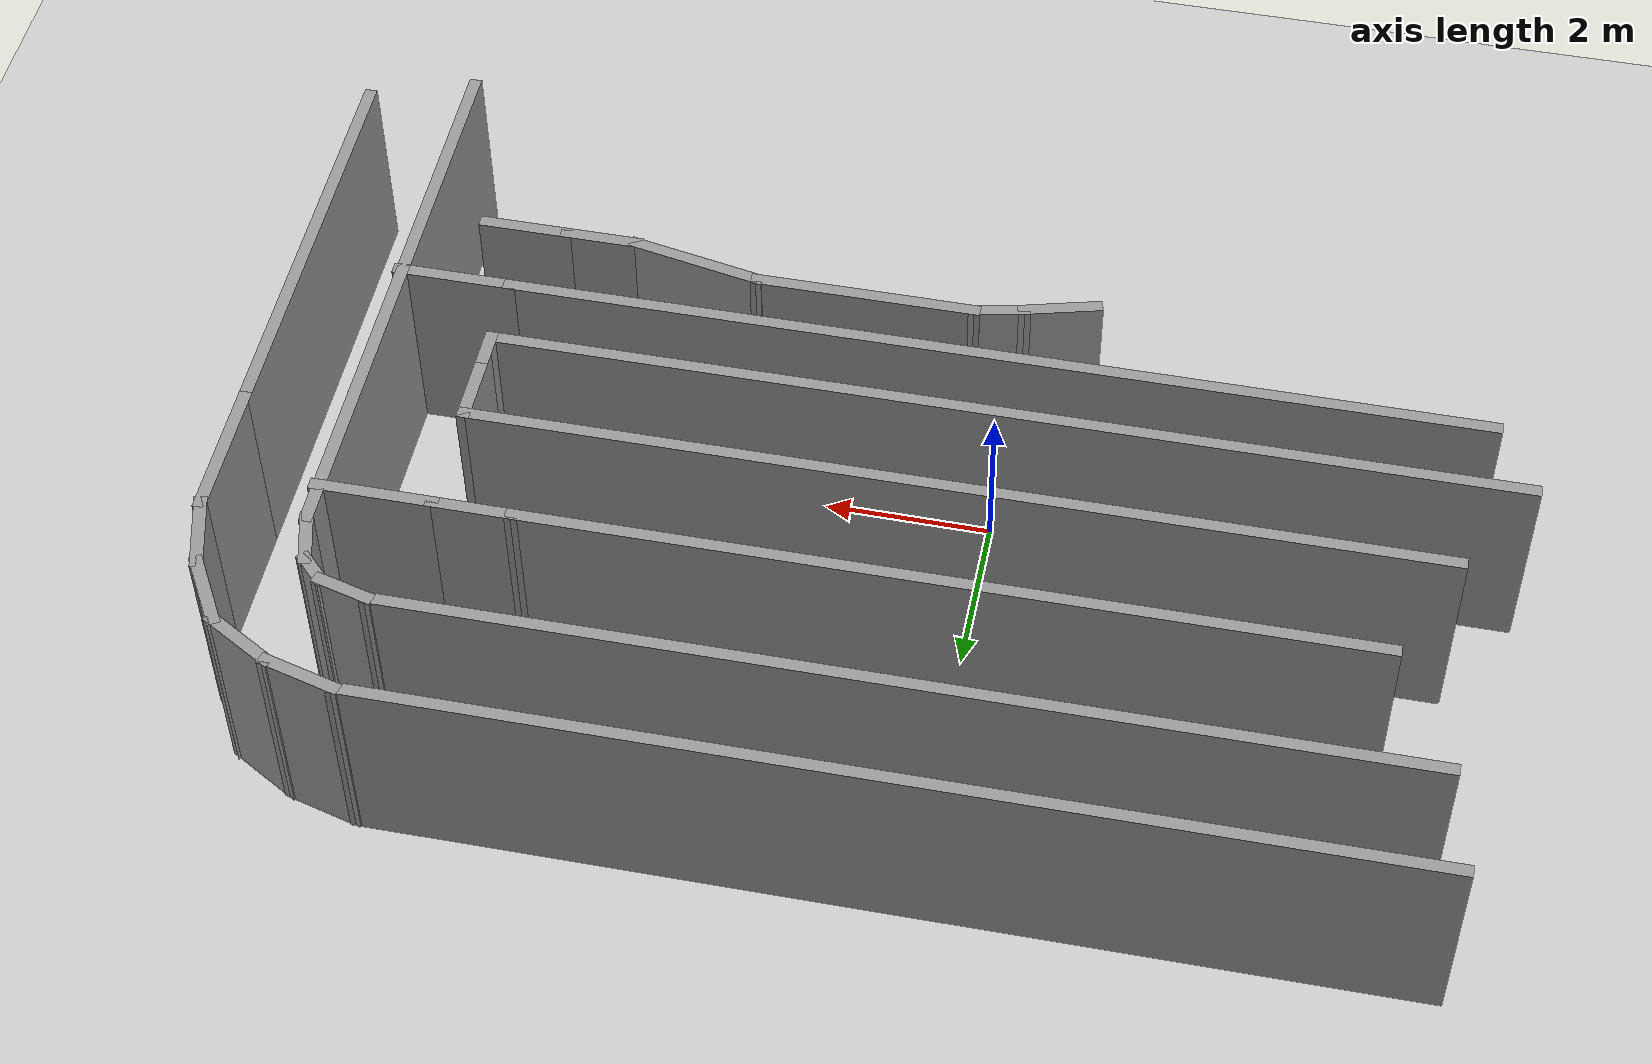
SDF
<sdf version="1.7">
 <world name="default">
  <model name="ground_plane">
   <static>1</static>
   <link name="link">
    <collision name="collision">
     <geometry><plane><normal>0 0 1</normal><size>100 100</size></plane></geometry>
     <surface>
      <contact><collide_bitmask>65535</collide_bitmask></contact>
      <friction><ode><mu>100</mu><mu2>50</mu2></ode></friction>
     </surface>
    </collision>
    <visual name="visual">
     <cast_shadows>0</cast_shadows>
     <geometry><plane><normal>0 0 1</normal><size>100 100</size></plane></geometry>
     <material>
      <script><uri>file://media/materials/scripts/gazebo.material</uri><name>Gazebo/Grey</name></script>
     </material>
    </visual>
   </link>
  </model>
  <model name="Race_Track">
   <link name="Wall_15">
    <pose>7.86803 4.21785 0 0 -0 1.8326</pose>
    <visual name="Wall_15_Visual">
     <pose>0 0 1.25 0 -0 0</pose>
     <geometry><box><size>1 0.15 2.5</size></box></geometry>
     <material>
      <script><uri>file://media/materials/scripts/gazebo.material</uri><name>Gazebo/Grey</name></script>
      <ambient>1 1 1 1</ambient>
      <shader type="pixel"/>
     </material>
     <meta><layer>0</layer></meta>
    </visual>
    <collision name="Wall_15_Collision">
     <pose>0 0 1.25 0 -0 0</pose>
     <geometry><box><size>1 0.15 2.5</size></box></geometry>
     <surface>
      <friction>
       <ode><mu>1</mu><mu2>1</mu2><fdir1>0 0 0</fdir1><slip1>0</slip1><slip2>0</slip2></ode>
       <torsional>
        <coefficient>1</coefficient>
        <patch_radius>0</patch_radius>
        <surface_radius>0</surface_radius>
        <use_patch_radius>1</use_patch_radius>
        <ode><slip>0</slip></ode>
       </torsional>
      </friction>
      <bounce><restitution_coefficient>0</restitution_coefficient><threshold>1e+06</threshold></bounce>
      <contact>
       <collide_without_contact>0</collide_without_contact>
       <collide_without_contact_bitmask>1</collide_without_contact_bitmask>
       <collide_bitmask>1</collide_bitmask>
       <ode>
        <soft_cfm>0</soft_cfm>
        <soft_erp>0.2</soft_erp>
        <kp>1e+13</kp>
        <kd>1</kd>
        <max_vel>0.01</max_vel>
        <min_depth>0</min_depth>
       </ode>
       <bullet>
        <split_impulse>1</split_impulse>
        <split_impulse_penetration_threshold>-0.01</split_impulse_penetration_threshold>
        <soft_cfm>0</soft_cfm>
        <soft_erp>0.2</soft_erp>
        <kp>1e+13</kp>
        <kd>1</kd>
       </bullet>
      </contact>
     </surface>
    </collision>
   </link>
   <link name="Wall_16">
    <pose>7.54554 4.99643 0 0 -0 2.0944</pose>
    <visual name="Wall_16_Visual">
     <pose>0 0 1.25 0 -0 0</pose>
     <geometry><box><size>1 0.15 2.5</size></box></geometry>
     <material>
      <script><uri>file://media/materials/scripts/gazebo.material</uri><name>Gazebo/Grey</name></script>
      <ambient>1 1 1 1</ambient>
      <shader type="pixel"/>
     </material>
     <meta><layer>0</layer></meta>
    </visual>
    <collision name="Wall_16_Collision">
     <pose>0 0 1.25 0 -0 0</pose>
     <geometry><box><size>1 0.15 2.5</size></box></geometry>
     <surface>
      <friction>
       <ode><mu>1</mu><mu2>1</mu2><fdir1>0 0 0</fdir1><slip1>0</slip1><slip2>0</slip2></ode>
       <torsional>
        <coefficient>1</coefficient>
        <patch_radius>0</patch_radius>
        <surface_radius>0</surface_radius>
        <use_patch_radius>1</use_patch_radius>
        <ode><slip>0</slip></ode>
       </torsional>
      </friction>
      <bounce><restitution_coefficient>0</restitution_coefficient><threshold>1e+06</threshold></bounce>
      <contact>
       <collide_without_contact>0</collide_without_contact>
       <collide_without_contact_bitmask>1</collide_without_contact_bitmask>
       <collide_bitmask>1</collide_bitmask>
       <ode>
        <soft_cfm>0</soft_cfm>
        <soft_erp>0.2</soft_erp>
        <kp>1e+13</kp>
        <kd>1</kd>
        <max_vel>0.01</max_vel>
        <min_depth>0</min_depth>
       </ode>
       <bullet>
        <split_impulse>1</split_impulse>
        <split_impulse_penetration_threshold>-0.01</split_impulse_penetration_threshold>
        <soft_cfm>0</soft_cfm>
        <soft_erp>0.2</soft_erp>
        <kp>1e+13</kp>
        <kd>1</kd>
       </bullet>
      </contact>
     </surface>
    </collision>
   </link>
   <link name="Wall_17">
    <pose>6.96498 5.57699 0 0 -0 2.61799</pose>
    <visual name="Wall_17_Visual">
     <pose>0 0 1.25 0 -0 0</pose>
     <geometry><box><size>1 0.15 2.5</size></box></geometry>
     <material>
      <script><uri>file://media/materials/scripts/gazebo.material</uri><name>Gazebo/Grey</name></script>
      <ambient>1 1 1 1</ambient>
      <shader type="pixel"/>
     </material>
     <meta><layer>0</layer></meta>
    </visual>
    <collision name="Wall_17_Collision">
     <pose>0 0 1.25 0 -0 0</pose>
     <geometry><box><size>1 0.15 2.5</size></box></geometry>
     <surface>
      <friction>
       <ode><mu>1</mu><mu2>1</mu2><fdir1>0 0 0</fdir1><slip1>0</slip1><slip2>0</slip2></ode>
       <torsional>
        <coefficient>1</coefficient>
        <patch_radius>0</patch_radius>
        <surface_radius>0</surface_radius>
        <use_patch_radius>1</use_patch_radius>
        <ode><slip>0</slip></ode>
       </torsional>
      </friction>
      <bounce><restitution_coefficient>0</restitution_coefficient><threshold>1e+06</threshold></bounce>
      <contact>
       <collide_without_contact>0</collide_without_contact>
       <collide_without_contact_bitmask>1</collide_without_contact_bitmask>
       <collide_bitmask>1</collide_bitmask>
       <ode>
        <soft_cfm>0</soft_cfm>
        <soft_erp>0.2</soft_erp>
        <kp>1e+13</kp>
        <kd>1</kd>
        <max_vel>0.01</max_vel>
        <min_depth>0</min_depth>
       </ode>
       <bullet>
        <split_impulse>1</split_impulse>
        <split_impulse_penetration_threshold>-0.01</split_impulse_penetration_threshold>
        <soft_cfm>0</soft_cfm>
        <soft_erp>0.2</soft_erp>
        <kp>1e+13</kp>
        <kd>1</kd>
       </bullet>
      </contact>
     </surface>
    </collision>
   </link>
   <link name="Wall_171">
    <pose>5.49179 -1.04733 0 0 -0 3.14159</pose>
    <visual name="Wall_171_Visual">
     <pose>0 0 1.25 0 -0 0</pose>
     <geometry><box><size>1.13438 0.15 2.5</size></box></geometry>
     <material>
      <script><uri>file://media/materials/scripts/gazebo.material</uri><name>Gazebo/Grey</name></script>
      <ambient>1 1 1 1</ambient>
      <shader type="pixel"/>
     </material>
     <meta><layer>0</layer></meta>
    </visual>
    <collision name="Wall_171_Collision">
     <pose>0 0 1.25 0 -0 0</pose>
     <geometry><box><size>1.13438 0.15 2.5</size></box></geometry>
     <surface>
      <friction>
       <ode><mu>1</mu><mu2>1</mu2><fdir1>0 0 0</fdir1><slip1>0</slip1><slip2>0</slip2></ode>
       <torsional>
        <coefficient>1</coefficient>
        <patch_radius>0</patch_radius>
        <surface_radius>0</surface_radius>
        <use_patch_radius>1</use_patch_radius>
        <ode><slip>0</slip></ode>
       </torsional>
      </friction>
      <bounce><restitution_coefficient>0</restitution_coefficient><threshold>1e+06</threshold></bounce>
      <contact>
       <collide_without_contact>0</collide_without_contact>
       <collide_without_contact_bitmask>1</collide_without_contact_bitmask>
       <collide_bitmask>1</collide_bitmask>
       <ode>
        <soft_cfm>0</soft_cfm>
        <soft_erp>0.2</soft_erp>
        <kp>1e+13</kp>
        <kd>1</kd>
        <max_vel>0.01</max_vel>
        <min_depth>0</min_depth>
       </ode>
       <bullet>
        <split_impulse>1</split_impulse>
        <split_impulse_penetration_threshold>-0.01</split_impulse_penetration_threshold>
        <soft_cfm>0</soft_cfm>
        <soft_erp>0.2</soft_erp>
        <kp>1e+13</kp>
        <kd>1</kd>
       </bullet>
      </contact>
     </surface>
    </collision>
   </link>
   <link name="Wall_18">
    <pose>6.1864 5.89949 0 0 -0 2.87979</pose>
    <visual name="Wall_18_Visual">
     <pose>0 0 1.25 0 -0 0</pose>
     <geometry><box><size>1 0.15 2.5</size></box></geometry>
     <material>
      <script><uri>file://media/materials/scripts/gazebo.material</uri><name>Gazebo/Grey</name></script>
      <ambient>1 1 1 1</ambient>
      <shader type="pixel"/>
     </material>
     <meta><layer>0</layer></meta>
    </visual>
    <collision name="Wall_18_Collision">
     <pose>0 0 1.25 0 -0 0</pose>
     <geometry><box><size>1 0.15 2.5</size></box></geometry>
     <surface>
      <friction>
       <ode><mu>1</mu><mu2>1</mu2><fdir1>0 0 0</fdir1><slip1>0</slip1><slip2>0</slip2></ode>
       <torsional>
        <coefficient>1</coefficient>
        <patch_radius>0</patch_radius>
        <surface_radius>0</surface_radius>
        <use_patch_radius>1</use_patch_radius>
        <ode><slip>0</slip></ode>
       </torsional>
      </friction>
      <bounce><restitution_coefficient>0</restitution_coefficient><threshold>1e+06</threshold></bounce>
      <contact>
       <collide_without_contact>0</collide_without_contact>
       <collide_without_contact_bitmask>1</collide_without_contact_bitmask>
       <collide_bitmask>1</collide_bitmask>
       <ode>
        <soft_cfm>0</soft_cfm>
        <soft_erp>0.2</soft_erp>
        <kp>1e+13</kp>
        <kd>1</kd>
        <max_vel>0.01</max_vel>
        <min_depth>0</min_depth>
       </ode>
       <bullet>
        <split_impulse>1</split_impulse>
        <split_impulse_penetration_threshold>-0.01</split_impulse_penetration_threshold>
        <soft_cfm>0</soft_cfm>
        <soft_erp>0.2</soft_erp>
        <kp>1e+13</kp>
        <kd>1</kd>
       </bullet>
      </contact>
     </surface>
    </collision>
   </link>
   <link name="Wall_189">
    <pose>4.56015 -1.04733 0 0 -0 3.14159</pose>
    <visual name="Wall_189_Visual">
     <pose>0 0 1.25 0 -0 0</pose>
     <geometry><box><size>1 0.15 2.5</size></box></geometry>
     <material>
      <script><uri>file://media/materials/scripts/gazebo.material</uri><name>Gazebo/Grey</name></script>
      <ambient>1 1 1 1</ambient>
      <shader type="pixel"/>
     </material>
     <meta><layer>0</layer></meta>
    </visual>
    <collision name="Wall_189_Collision">
     <pose>0 0 1.25 0 -0 0</pose>
     <geometry><box><size>1 0.15 2.5</size></box></geometry>
     <surface>
      <friction>
       <ode><mu>1</mu><mu2>1</mu2><fdir1>0 0 0</fdir1><slip1>0</slip1><slip2>0</slip2></ode>
       <torsional>
        <coefficient>1</coefficient>
        <patch_radius>0</patch_radius>
        <surface_radius>0</surface_radius>
        <use_patch_radius>1</use_patch_radius>
        <ode><slip>0</slip></ode>
       </torsional>
      </friction>
      <bounce><restitution_coefficient>0</restitution_coefficient><threshold>1e+06</threshold></bounce>
      <contact>
       <collide_without_contact>0</collide_without_contact>
       <collide_without_contact_bitmask>1</collide_without_contact_bitmask>
       <collide_bitmask>1</collide_bitmask>
       <ode>
        <soft_cfm>0</soft_cfm>
        <soft_erp>0.2</soft_erp>
        <kp>1e+13</kp>
        <kd>1</kd>
        <max_vel>0.01</max_vel>
        <min_depth>0</min_depth>
       </ode>
       <bullet>
        <split_impulse>1</split_impulse>
        <split_impulse_penetration_threshold>-0.01</split_impulse_penetration_threshold>
        <soft_cfm>0</soft_cfm>
        <soft_erp>0.2</soft_erp>
        <kp>1e+13</kp>
        <kd>1</kd>
       </bullet>
      </contact>
     </surface>
    </collision>
   </link>
   <link name="Wall_19">
    <pose>-0.274121 6.00949 0 0 -0 3.14159</pose>
    <visual name="Wall_19_Visual">
     <pose>0 0 1.25 0 -0 0</pose>
     <geometry><box><size>12.25 0.15 2.5</size></box></geometry>
     <material>
      <script><uri>file://media/materials/scripts/gazebo.material</uri><name>Gazebo/Grey</name></script>
      <ambient>1 1 1 1</ambient>
      <shader type="pixel"/>
     </material>
     <meta><layer>0</layer></meta>
    </visual>
    <collision name="Wall_19_Collision">
     <pose>0 0 1.25 0 -0 0</pose>
     <geometry><box><size>12.25 0.15 2.5</size></box></geometry>
     <surface>
      <friction>
       <ode><mu>1</mu><mu2>1</mu2><fdir1>0 0 0</fdir1><slip1>0</slip1><slip2>0</slip2></ode>
       <torsional>
        <coefficient>1</coefficient>
        <patch_radius>0</patch_radius>
        <surface_radius>0</surface_radius>
        <use_patch_radius>1</use_patch_radius>
        <ode><slip>0</slip></ode>
       </torsional>
      </friction>
      <bounce><restitution_coefficient>0</restitution_coefficient><threshold>1e+06</threshold></bounce>
      <contact>
       <collide_without_contact>0</collide_without_contact>
       <collide_without_contact_bitmask>1</collide_without_contact_bitmask>
       <collide_bitmask>1</collide_bitmask>
       <ode>
        <soft_cfm>0</soft_cfm>
        <soft_erp>0.2</soft_erp>
        <kp>1e+13</kp>
        <kd>1</kd>
        <max_vel>0.01</max_vel>
        <min_depth>0</min_depth>
       </ode>
       <bullet>
        <split_impulse>1</split_impulse>
        <split_impulse_penetration_threshold>-0.01</split_impulse_penetration_threshold>
        <soft_cfm>0</soft_cfm>
        <soft_erp>0.2</soft_erp>
        <kp>1e+13</kp>
        <kd>1</kd>
       </bullet>
      </contact>
     </surface>
    </collision>
   </link>
   <link name="Wall_220">
    <pose>-0.992486 -0.973086 0 0 -0 0.261799</pose>
    <visual name="Wall_220_Visual">
     <pose>0 0 1.25 0 -0 0</pose>
     <geometry><box><size>1 0.15 2.5</size></box></geometry>
     <material>
      <script><uri>file://media/materials/scripts/gazebo.material</uri><name>Gazebo/Grey</name></script>
      <ambient>1 1 1 1</ambient>
      <shader type="pixel"/>
     </material>
     <meta><layer>0</layer></meta>
    </visual>
    <collision name="Wall_220_Collision">
     <pose>0 0 1.25 0 -0 0</pose>
     <geometry><box><size>1 0.15 2.5</size></box></geometry>
     <surface>
      <friction>
       <ode><mu>1</mu><mu2>1</mu2><fdir1>0 0 0</fdir1><slip1>0</slip1><slip2>0</slip2></ode>
       <torsional>
        <coefficient>1</coefficient>
        <patch_radius>0</patch_radius>
        <surface_radius>0</surface_radius>
        <use_patch_radius>1</use_patch_radius>
        <ode><slip>0</slip></ode>
       </torsional>
      </friction>
      <bounce><restitution_coefficient>0</restitution_coefficient><threshold>1e+06</threshold></bounce>
      <contact>
       <collide_without_contact>0</collide_without_contact>
       <collide_without_contact_bitmask>1</collide_without_contact_bitmask>
       <collide_bitmask>1</collide_bitmask>
       <ode>
        <soft_cfm>0</soft_cfm>
        <soft_erp>0.2</soft_erp>
        <kp>1e+13</kp>
        <kd>1</kd>
        <max_vel>0.01</max_vel>
        <min_depth>0</min_depth>
       </ode>
       <bullet>
        <split_impulse>1</split_impulse>
        <split_impulse_penetration_threshold>-0.01</split_impulse_penetration_threshold>
        <soft_cfm>0</soft_cfm>
        <soft_erp>0.2</soft_erp>
        <kp>1e+13</kp>
        <kd>1</kd>
       </bullet>
      </contact>
     </surface>
    </collision>
   </link>
   <link name="Wall_221">
    <pose>-0.294762 -0.803967 0 0 -0 0.203014</pose>
    <visual name="Wall_221_Visual">
     <pose>0 0 1.25 0 -0 0</pose>
     <geometry><box><size>0.736454 0.15 2.5</size></box></geometry>
     <material>
      <script><uri>file://media/materials/scripts/gazebo.material</uri><name>Gazebo/Grey</name></script>
      <ambient>1 1 1 1</ambient>
      <shader type="pixel"/>
     </material>
     <meta><layer>0</layer></meta>
    </visual>
    <collision name="Wall_221_Collision">
     <pose>0 0 1.25 0 -0 0</pose>
     <geometry><box><size>0.736454 0.15 2.5</size></box></geometry>
     <surface>
      <friction>
       <ode><mu>1</mu><mu2>1</mu2><fdir1>0 0 0</fdir1><slip1>0</slip1><slip2>0</slip2></ode>
       <torsional>
        <coefficient>1</coefficient>
        <patch_radius>0</patch_radius>
        <surface_radius>0</surface_radius>
        <use_patch_radius>1</use_patch_radius>
        <ode><slip>0</slip></ode>
       </torsional>
      </friction>
      <bounce><restitution_coefficient>0</restitution_coefficient><threshold>1e+06</threshold></bounce>
      <contact>
       <collide_without_contact>0</collide_without_contact>
       <collide_without_contact_bitmask>1</collide_without_contact_bitmask>
       <collide_bitmask>1</collide_bitmask>
       <ode>
        <soft_cfm>0</soft_cfm>
        <soft_erp>0.2</soft_erp>
        <kp>1e+13</kp>
        <kd>1</kd>
        <max_vel>0.01</max_vel>
        <min_depth>0</min_depth>
       </ode>
       <bullet>
        <split_impulse>1</split_impulse>
        <split_impulse_penetration_threshold>-0.01</split_impulse_penetration_threshold>
        <soft_cfm>0</soft_cfm>
        <soft_erp>0.2</soft_erp>
        <kp>1e+13</kp>
        <kd>1</kd>
       </bullet>
      </contact>
     </surface>
    </collision>
   </link>
   <link name="Wall_222">
    <pose>1.29244 -0.744845 0 0 -0 0</pose>
    <visual name="Wall_222_Visual">
     <pose>0 0 1.25 0 -0 0</pose>
     <geometry><box><size>2.75 0.15 2.5</size></box></geometry>
     <material>
      <script><uri>file://media/materials/scripts/gazebo.material</uri><name>Gazebo/Grey</name></script>
      <ambient>1 1 1 1</ambient>
      <shader type="pixel"/>
     </material>
     <meta><layer>0</layer></meta>
    </visual>
    <collision name="Wall_222_Collision">
     <pose>0 0 1.25 0 -0 0</pose>
     <geometry><box><size>2.75 0.15 2.5</size></box></geometry>
     <surface>
      <friction>
       <ode><mu>1</mu><mu2>1</mu2><fdir1>0 0 0</fdir1><slip1>0</slip1><slip2>0</slip2></ode>
       <torsional>
        <coefficient>1</coefficient>
        <patch_radius>0</patch_radius>
        <surface_radius>0</surface_radius>
        <use_patch_radius>1</use_patch_radius>
        <ode><slip>0</slip></ode>
       </torsional>
      </friction>
      <bounce><restitution_coefficient>0</restitution_coefficient><threshold>1e+06</threshold></bounce>
      <contact>
       <collide_without_contact>0</collide_without_contact>
       <collide_without_contact_bitmask>1</collide_without_contact_bitmask>
       <collide_bitmask>1</collide_bitmask>
       <ode>
        <soft_cfm>0</soft_cfm>
        <soft_erp>0.2</soft_erp>
        <kp>1e+13</kp>
        <kd>1</kd>
        <max_vel>0.01</max_vel>
        <min_depth>0</min_depth>
       </ode>
       <bullet>
        <split_impulse>1</split_impulse>
        <split_impulse_penetration_threshold>-0.01</split_impulse_penetration_threshold>
        <soft_cfm>0</soft_cfm>
        <soft_erp>0.2</soft_erp>
        <kp>1e+13</kp>
        <kd>1</kd>
       </bullet>
      </contact>
     </surface>
    </collision>
   </link>
   <link name="Wall_223">
    <pose>3.36379 -0.896088 0 0 0 -0.193618</pose>
    <visual name="Wall_223_Visual">
     <pose>0 0 1.25 0 -0 0</pose>
     <geometry><box><size>1.72208 0.15 2.5</size></box></geometry>
     <material>
      <script><uri>file://media/materials/scripts/gazebo.material</uri><name>Gazebo/Grey</name></script>
      <ambient>1 1 1 1</ambient>
      <shader type="pixel"/>
     </material>
     <meta><layer>0</layer></meta>
    </visual>
    <collision name="Wall_223_Collision">
     <pose>0 0 1.25 0 -0 0</pose>
     <geometry><box><size>1.72208 0.15 2.5</size></box></geometry>
     <surface>
      <friction>
       <ode><mu>1</mu><mu2>1</mu2><fdir1>0 0 0</fdir1><slip1>0</slip1><slip2>0</slip2></ode>
       <torsional>
        <coefficient>1</coefficient>
        <patch_radius>0</patch_radius>
        <surface_radius>0</surface_radius>
        <use_patch_radius>1</use_patch_radius>
        <ode><slip>0</slip></ode>
       </torsional>
      </friction>
      <bounce><restitution_coefficient>0</restitution_coefficient><threshold>1e+06</threshold></bounce>
      <contact>
       <collide_without_contact>0</collide_without_contact>
       <collide_without_contact_bitmask>1</collide_without_contact_bitmask>
       <collide_bitmask>1</collide_bitmask>
       <ode>
        <soft_cfm>0</soft_cfm>
        <soft_erp>0.2</soft_erp>
        <kp>1e+13</kp>
        <kd>1</kd>
        <max_vel>0.01</max_vel>
        <min_depth>0</min_depth>
       </ode>
       <bullet>
        <split_impulse>1</split_impulse>
        <split_impulse_penetration_threshold>-0.01</split_impulse_penetration_threshold>
        <soft_cfm>0</soft_cfm>
        <soft_erp>0.2</soft_erp>
        <kp>1e+13</kp>
        <kd>1</kd>
       </bullet>
      </contact>
     </surface>
    </collision>
   </link>
   <link name="Wall_51">
    <pose>6.75129 0.227873 0 0 -0 1.5708</pose>
    <visual name="Wall_51_Visual">
     <pose>0 0 1.25 0 -0 0</pose>
     <geometry><box><size>7.25 0.15 2.5</size></box></geometry>
     <material>
      <script><uri>file://media/materials/scripts/gazebo.material</uri><name>Gazebo/Grey</name></script>
      <ambient>1 1 1 1</ambient>
      <shader type="pixel"/>
     </material>
     <meta><layer>0</layer></meta>
    </visual>
    <collision name="Wall_51_Collision">
     <pose>0 0 1.25 0 -0 0</pose>
     <geometry><box><size>7.25 0.15 2.5</size></box></geometry>
     <surface>
      <friction>
       <ode><mu>1</mu><mu2>1</mu2><fdir1>0 0 0</fdir1><slip1>0</slip1><slip2>0</slip2></ode>
       <torsional>
        <coefficient>1</coefficient>
        <patch_radius>0</patch_radius>
        <surface_radius>0</surface_radius>
        <use_patch_radius>1</use_patch_radius>
        <ode><slip>0</slip></ode>
       </torsional>
      </friction>
      <bounce><restitution_coefficient>0</restitution_coefficient><threshold>1e+06</threshold></bounce>
      <contact>
       <collide_without_contact>0</collide_without_contact>
       <collide_without_contact_bitmask>1</collide_without_contact_bitmask>
       <collide_bitmask>1</collide_bitmask>
       <ode>
        <soft_cfm>0</soft_cfm>
        <soft_erp>0.2</soft_erp>
        <kp>1e+13</kp>
        <kd>1</kd>
        <max_vel>0.01</max_vel>
        <min_depth>0</min_depth>
       </ode>
       <bullet>
        <split_impulse>1</split_impulse>
        <split_impulse_penetration_threshold>-0.01</split_impulse_penetration_threshold>
        <soft_cfm>0</soft_cfm>
        <soft_erp>0.2</soft_erp>
        <kp>1e+13</kp>
        <kd>1</kd>
       </bullet>
      </contact>
     </surface>
    </collision>
   </link>
   <link name="Wall_52">
    <pose>6.67364 4.06765 0 0 -0 1.8326</pose>
    <visual name="Wall_52_Visual">
     <pose>0 0 1.25 0 -0 0</pose>
     <geometry><box><size>0.75 0.15 2.5</size></box></geometry>
     <material>
      <script><uri>file://media/materials/scripts/gazebo.material</uri><name>Gazebo/Grey</name></script>
      <ambient>1 1 1 1</ambient>
      <shader type="pixel"/>
     </material>
     <meta><layer>0</layer></meta>
    </visual>
    <collision name="Wall_52_Collision">
     <pose>0 0 1.25 0 -0 0</pose>
     <geometry><box><size>0.75 0.15 2.5</size></box></geometry>
     <surface>
      <friction>
       <ode><mu>1</mu><mu2>1</mu2><fdir1>0 0 0</fdir1><slip1>0</slip1><slip2>0</slip2></ode>
       <torsional>
        <coefficient>1</coefficient>
        <patch_radius>0</patch_radius>
        <surface_radius>0</surface_radius>
        <use_patch_radius>1</use_patch_radius>
        <ode><slip>0</slip></ode>
       </torsional>
      </friction>
      <bounce><restitution_coefficient>0</restitution_coefficient><threshold>1e+06</threshold></bounce>
      <contact>
       <collide_without_contact>0</collide_without_contact>
       <collide_without_contact_bitmask>1</collide_without_contact_bitmask>
       <collide_bitmask>1</collide_bitmask>
       <ode>
        <soft_cfm>0</soft_cfm>
        <soft_erp>0.2</soft_erp>
        <kp>1e+13</kp>
        <kd>1</kd>
        <max_vel>0.01</max_vel>
        <min_depth>0</min_depth>
       </ode>
       <bullet>
        <split_impulse>1</split_impulse>
        <split_impulse_penetration_threshold>-0.01</split_impulse_penetration_threshold>
        <soft_cfm>0</soft_cfm>
        <soft_erp>0.2</soft_erp>
        <kp>1e+13</kp>
        <kd>1</kd>
       </bullet>
      </contact>
     </surface>
    </collision>
   </link>
   <link name="Wall_55">
    <pose>6.47225 4.48117 0 0 -0 2.35619</pose>
    <visual name="Wall_55_Visual">
     <pose>0 0 1.25 0 -0 0</pose>
     <geometry><box><size>0.5 0.15 2.5</size></box></geometry>
     <material>
      <script><uri>file://media/materials/scripts/gazebo.material</uri><name>Gazebo/Grey</name></script>
      <ambient>1 1 1 1</ambient>
      <shader type="pixel"/>
     </material>
     <meta><layer>0</layer></meta>
    </visual>
    <collision name="Wall_55_Collision">
     <pose>0 0 1.25 0 -0 0</pose>
     <geometry><box><size>0.5 0.15 2.5</size></box></geometry>
     <surface>
      <friction>
       <ode><mu>1</mu><mu2>1</mu2><fdir1>0 0 0</fdir1><slip1>0</slip1><slip2>0</slip2></ode>
       <torsional>
        <coefficient>1</coefficient>
        <patch_radius>0</patch_radius>
        <surface_radius>0</surface_radius>
        <use_patch_radius>1</use_patch_radius>
        <ode><slip>0</slip></ode>
       </torsional>
      </friction>
      <bounce><restitution_coefficient>0</restitution_coefficient><threshold>1e+06</threshold></bounce>
      <contact>
       <collide_without_contact>0</collide_without_contact>
       <collide_without_contact_bitmask>1</collide_without_contact_bitmask>
       <collide_bitmask>1</collide_bitmask>
       <ode>
        <soft_cfm>0</soft_cfm>
        <soft_erp>0.2</soft_erp>
        <kp>1e+13</kp>
        <kd>1</kd>
        <max_vel>0.01</max_vel>
        <min_depth>0</min_depth>
       </ode>
       <bullet>
        <split_impulse>1</split_impulse>
        <split_impulse_penetration_threshold>-0.01</split_impulse_penetration_threshold>
        <soft_cfm>0</soft_cfm>
        <soft_erp>0.2</soft_erp>
        <kp>1e+13</kp>
        <kd>1</kd>
       </bullet>
      </contact>
     </surface>
    </collision>
   </link>
   <link name="Wall_56">
    <pose>6.05873 4.68256 0 0 -0 2.87979</pose>
    <visual name="Wall_56_Visual">
     <pose>0 0 1.25 0 -0 0</pose>
     <geometry><box><size>0.75 0.15 2.5</size></box></geometry>
     <material>
      <script><uri>file://media/materials/scripts/gazebo.material</uri><name>Gazebo/Grey</name></script>
      <ambient>1 1 1 1</ambient>
      <shader type="pixel"/>
     </material>
     <meta><layer>0</layer></meta>
    </visual>
    <collision name="Wall_56_Collision">
     <pose>0 0 1.25 0 -0 0</pose>
     <geometry><box><size>0.75 0.15 2.5</size></box></geometry>
     <surface>
      <friction>
       <ode><mu>1</mu><mu2>1</mu2><fdir1>0 0 0</fdir1><slip1>0</slip1><slip2>0</slip2></ode>
       <torsional>
        <coefficient>1</coefficient>
        <patch_radius>0</patch_radius>
        <surface_radius>0</surface_radius>
        <use_patch_radius>1</use_patch_radius>
        <ode><slip>0</slip></ode>
       </torsional>
      </friction>
      <bounce><restitution_coefficient>0</restitution_coefficient><threshold>1e+06</threshold></bounce>
      <contact>
       <collide_without_contact>0</collide_without_contact>
       <collide_without_contact_bitmask>1</collide_without_contact_bitmask>
       <collide_bitmask>1</collide_bitmask>
       <ode>
        <soft_cfm>0</soft_cfm>
        <soft_erp>0.2</soft_erp>
        <kp>1e+13</kp>
        <kd>1</kd>
        <max_vel>0.01</max_vel>
        <min_depth>0</min_depth>
       </ode>
       <bullet>
        <split_impulse>1</split_impulse>
        <split_impulse_penetration_threshold>-0.01</split_impulse_penetration_threshold>
        <soft_cfm>0</soft_cfm>
        <soft_erp>0.2</soft_erp>
        <kp>1e+13</kp>
        <kd>1</kd>
       </bullet>
      </contact>
     </surface>
    </collision>
   </link>
   <link name="Wall_57">
    <pose>-0.156046 4.76021 0 0 -0 3.14159</pose>
    <visual name="Wall_57_Visual">
     <pose>0 0 1.25 0 -0 0</pose>
     <geometry><box><size>12 0.15 2.5</size></box></geometry>
     <material>
      <script><uri>file://media/materials/scripts/gazebo.material</uri><name>Gazebo/Grey</name></script>
      <ambient>1 1 1 1</ambient>
      <shader type="pixel"/>
     </material>
     <meta><layer>0</layer></meta>
    </visual>
    <collision name="Wall_57_Collision">
     <pose>0 0 1.25 0 -0 0</pose>
     <geometry><box><size>12 0.15 2.5</size></box></geometry>
     <surface>
      <friction>
       <ode><mu>1</mu><mu2>1</mu2><fdir1>0 0 0</fdir1><slip1>0</slip1><slip2>0</slip2></ode>
       <torsional>
        <coefficient>1</coefficient>
        <patch_radius>0</patch_radius>
        <surface_radius>0</surface_radius>
        <use_patch_radius>1</use_patch_radius>
        <ode><slip>0</slip></ode>
       </torsional>
      </friction>
      <bounce><restitution_coefficient>0</restitution_coefficient><threshold>1e+06</threshold></bounce>
      <contact>
       <collide_without_contact>0</collide_without_contact>
       <collide_without_contact_bitmask>1</collide_without_contact_bitmask>
       <collide_bitmask>1</collide_bitmask>
       <ode>
        <soft_cfm>0</soft_cfm>
        <soft_erp>0.2</soft_erp>
        <kp>1e+13</kp>
        <kd>1</kd>
        <max_vel>0.01</max_vel>
        <min_depth>0</min_depth>
       </ode>
       <bullet>
        <split_impulse>1</split_impulse>
        <split_impulse_penetration_threshold>-0.01</split_impulse_penetration_threshold>
        <soft_cfm>0</soft_cfm>
        <soft_erp>0.2</soft_erp>
        <kp>1e+13</kp>
        <kd>1</kd>
       </bullet>
      </contact>
     </surface>
    </collision>
   </link>
   <link name="Wall_79">
    <pose>-0.408559 3.30834 0 0 -0 0</pose>
    <visual name="Wall_79_Visual">
     <pose>0 0 1.25 0 -0 0</pose>
     <geometry><box><size>10 0.15 2.5</size></box></geometry>
     <material>
      <script><uri>file://media/materials/scripts/gazebo.material</uri><name>Gazebo/Grey</name></script>
      <ambient>1 1 1 1</ambient>
      <shader type="pixel"/>
     </material>
     <meta><layer>0</layer></meta>
    </visual>
    <collision name="Wall_79_Collision">
     <pose>0 0 1.25 0 -0 0</pose>
     <geometry><box><size>10 0.15 2.5</size></box></geometry>
     <surface>
      <friction>
       <ode><mu>1</mu><mu2>1</mu2><fdir1>0 0 0</fdir1><slip1>0</slip1><slip2>0</slip2></ode>
       <torsional>
        <coefficient>1</coefficient>
        <patch_radius>0</patch_radius>
        <surface_radius>0</surface_radius>
        <use_patch_radius>1</use_patch_radius>
        <ode><slip>0</slip></ode>
       </torsional>
      </friction>
      <bounce><restitution_coefficient>0</restitution_coefficient><threshold>1e+06</threshold></bounce>
      <contact>
       <collide_without_contact>0</collide_without_contact>
       <collide_without_contact_bitmask>1</collide_without_contact_bitmask>
       <collide_bitmask>1</collide_bitmask>
       <ode>
        <soft_cfm>0</soft_cfm>
        <soft_erp>0.2</soft_erp>
        <kp>1e+13</kp>
        <kd>1</kd>
        <max_vel>0.01</max_vel>
        <min_depth>0</min_depth>
       </ode>
       <bullet>
        <split_impulse>1</split_impulse>
        <split_impulse_penetration_threshold>-0.01</split_impulse_penetration_threshold>
        <soft_cfm>0</soft_cfm>
        <soft_erp>0.2</soft_erp>
        <kp>1e+13</kp>
        <kd>1</kd>
       </bullet>
      </contact>
     </surface>
    </collision>
   </link>
   <link name="Wall_8">
    <pose>7.97803 -0.342665 0 0 -0 1.5708</pose>
    <visual name="Wall_8_Visual">
     <pose>0 0 1.25 0 -0 0</pose>
     <geometry><box><size>5.25 0.15 2.5</size></box></geometry>
     <material>
      <script><uri>file://media/materials/scripts/gazebo.material</uri><name>Gazebo/Grey</name></script>
      <ambient>1 1 1 1</ambient>
      <shader type="pixel"/>
     </material>
     <meta><layer>0</layer></meta>
    </visual>
    <collision name="Wall_8_Collision">
     <pose>0 0 1.25 0 -0 0</pose>
     <geometry><box><size>5.25 0.15 2.5</size></box></geometry>
     <surface>
      <friction>
       <ode><mu>1</mu><mu2>1</mu2><fdir1>0 0 0</fdir1><slip1>0</slip1><slip2>0</slip2></ode>
       <torsional>
        <coefficient>1</coefficient>
        <patch_radius>0</patch_radius>
        <surface_radius>0</surface_radius>
        <use_patch_radius>1</use_patch_radius>
        <ode><slip>0</slip></ode>
       </torsional>
      </friction>
      <bounce><restitution_coefficient>0</restitution_coefficient><threshold>1e+06</threshold></bounce>
      <contact>
       <collide_without_contact>0</collide_without_contact>
       <collide_without_contact_bitmask>1</collide_without_contact_bitmask>
       <collide_bitmask>1</collide_bitmask>
       <ode>
        <soft_cfm>0</soft_cfm>
        <soft_erp>0.2</soft_erp>
        <kp>1e+13</kp>
        <kd>1</kd>
        <max_vel>0.01</max_vel>
        <min_depth>0</min_depth>
       </ode>
       <bullet>
        <split_impulse>1</split_impulse>
        <split_impulse_penetration_threshold>-0.01</split_impulse_penetration_threshold>
        <soft_cfm>0</soft_cfm>
        <soft_erp>0.2</soft_erp>
        <kp>1e+13</kp>
        <kd>1</kd>
       </bullet>
      </contact>
     </surface>
    </collision>
   </link>
   <link name="Wall_81">
    <pose>6.1157 3.30578 0 0 -0 3.14159</pose>
    <visual name="Wall_81_Visual">
     <pose>0 0 1.25 0 -0 0</pose>
     <geometry><box><size>1.5 0.15 2.5</size></box></geometry>
     <material>
      <script><uri>file://media/materials/scripts/gazebo.material</uri><name>Gazebo/Grey</name></script>
      <ambient>1 1 1 1</ambient>
      <shader type="pixel"/>
     </material>
     <meta><layer>0</layer></meta>
    </visual>
    <collision name="Wall_81_Collision">
     <pose>0 0 1.25 0 -0 0</pose>
     <geometry><box><size>1.5 0.15 2.5</size></box></geometry>
     <surface>
      <friction>
       <ode><mu>1</mu><mu2>1</mu2><fdir1>0 0 0</fdir1><slip1>0</slip1><slip2>0</slip2></ode>
       <torsional>
        <coefficient>1</coefficient>
        <patch_radius>0</patch_radius>
        <surface_radius>0</surface_radius>
        <use_patch_radius>1</use_patch_radius>
        <ode><slip>0</slip></ode>
       </torsional>
      </friction>
      <bounce><restitution_coefficient>0</restitution_coefficient><threshold>1e+06</threshold></bounce>
      <contact>
       <collide_without_contact>0</collide_without_contact>
       <collide_without_contact_bitmask>1</collide_without_contact_bitmask>
       <collide_bitmask>1</collide_bitmask>
       <ode>
        <soft_cfm>0</soft_cfm>
        <soft_erp>0.2</soft_erp>
        <kp>1e+13</kp>
        <kd>1</kd>
        <max_vel>0.01</max_vel>
        <min_depth>0</min_depth>
       </ode>
       <bullet>
        <split_impulse>1</split_impulse>
        <split_impulse_penetration_threshold>-0.01</split_impulse_penetration_threshold>
        <soft_cfm>0</soft_cfm>
        <soft_erp>0.2</soft_erp>
        <kp>1e+13</kp>
        <kd>1</kd>
       </bullet>
      </contact>
     </surface>
    </collision>
   </link>
   <link name="Wall_84">
    <pose>4.97857 3.30706 0 0 0 -0.002776</pose>
    <visual name="Wall_84_Visual">
     <pose>0 0 1.25 0 -0 0</pose>
     <geometry><box><size>1.07426 0.15 2.5</size></box></geometry>
     <material>
      <script><uri>file://media/materials/scripts/gazebo.material</uri><name>Gazebo/Grey</name></script>
      <ambient>1 1 1 1</ambient>
      <shader type="pixel"/>
     </material>
     <meta><layer>0</layer></meta>
    </visual>
    <collision name="Wall_84_Collision">
     <pose>0 0 1.25 0 -0 0</pose>
     <geometry><box><size>1.07426 0.15 2.5</size></box></geometry>
     <surface>
      <friction>
       <ode><mu>1</mu><mu2>1</mu2><fdir1>0 0 0</fdir1><slip1>0</slip1><slip2>0</slip2></ode>
       <torsional>
        <coefficient>1</coefficient>
        <patch_radius>0</patch_radius>
        <surface_radius>0</surface_radius>
        <use_patch_radius>1</use_patch_radius>
        <ode><slip>0</slip></ode>
       </torsional>
      </friction>
      <bounce><restitution_coefficient>0</restitution_coefficient><threshold>1e+06</threshold></bounce>
      <contact>
       <collide_without_contact>0</collide_without_contact>
       <collide_without_contact_bitmask>1</collide_without_contact_bitmask>
       <collide_bitmask>1</collide_bitmask>
       <ode>
        <soft_cfm>0</soft_cfm>
        <soft_erp>0.2</soft_erp>
        <kp>1e+13</kp>
        <kd>1</kd>
        <max_vel>0.01</max_vel>
        <min_depth>0</min_depth>
       </ode>
       <bullet>
        <split_impulse>1</split_impulse>
        <split_impulse_penetration_threshold>-0.01</split_impulse_penetration_threshold>
        <soft_cfm>0</soft_cfm>
        <soft_erp>0.2</soft_erp>
        <kp>1e+13</kp>
        <kd>1</kd>
       </bullet>
      </contact>
     </surface>
    </collision>
   </link>
   <link name="Wall_86">
    <pose>-0.246431 1.95706 0 0 0 -0.000226</pose>
    <visual name="Wall_86_Visual">
     <pose>0 0 1.25 0 -0 0</pose>
     <geometry><box><size>11.5243 0.15 2.5</size></box></geometry>
     <material>
      <script><uri>file://media/materials/scripts/gazebo.material</uri><name>Gazebo/Grey</name></script>
      <ambient>1 1 1 1</ambient>
      <shader type="pixel"/>
     </material>
     <meta><layer>0</layer></meta>
    </visual>
    <collision name="Wall_86_Collision">
     <pose>0 0 1.25 0 -0 0</pose>
     <geometry><box><size>11.5243 0.15 2.5</size></box></geometry>
     <surface>
      <friction>
       <ode><mu>1</mu><mu2>1</mu2><fdir1>0 0 0</fdir1><slip1>0</slip1><slip2>0</slip2></ode>
       <torsional>
        <coefficient>1</coefficient>
        <patch_radius>0</patch_radius>
        <surface_radius>0</surface_radius>
        <use_patch_radius>1</use_patch_radius>
        <ode><slip>0</slip></ode>
       </torsional>
      </friction>
      <bounce><restitution_coefficient>0</restitution_coefficient><threshold>1e+06</threshold></bounce>
      <contact>
       <collide_without_contact>0</collide_without_contact>
       <collide_without_contact_bitmask>1</collide_without_contact_bitmask>
       <collide_bitmask>1</collide_bitmask>
       <ode>
        <soft_cfm>0</soft_cfm>
        <soft_erp>0.2</soft_erp>
        <kp>1e+13</kp>
        <kd>1</kd>
        <max_vel>0.01</max_vel>
        <min_depth>0</min_depth>
       </ode>
       <bullet>
        <split_impulse>1</split_impulse>
        <split_impulse_penetration_threshold>-0.01</split_impulse_penetration_threshold>
        <soft_cfm>0</soft_cfm>
        <soft_erp>0.2</soft_erp>
        <kp>1e+13</kp>
        <kd>1</kd>
       </bullet>
      </contact>
     </surface>
    </collision>
   </link>
   <link name="Wall_88">
    <pose>5.4407 1.53078 0 0 0 -1.5708</pose>
    <visual name="Wall_88_Visual">
     <pose>0 0 1.25 0 -0 0</pose>
     <geometry><box><size>1 0.15 2.5</size></box></geometry>
     <material>
      <script><uri>file://media/materials/scripts/gazebo.material</uri><name>Gazebo/Grey</name></script>
      <ambient>1 1 1 1</ambient>
      <shader type="pixel"/>
     </material>
     <meta><layer>0</layer></meta>
    </visual>
    <collision name="Wall_88_Collision">
     <pose>0 0 1.25 0 -0 0</pose>
     <geometry><box><size>1 0.15 2.5</size></box></geometry>
     <surface>
      <friction>
       <ode><mu>1</mu><mu2>1</mu2><fdir1>0 0 0</fdir1><slip1>0</slip1><slip2>0</slip2></ode>
       <torsional>
        <coefficient>1</coefficient>
        <patch_radius>0</patch_radius>
        <surface_radius>0</surface_radius>
        <use_patch_radius>1</use_patch_radius>
        <ode><slip>0</slip></ode>
       </torsional>
      </friction>
      <bounce><restitution_coefficient>0</restitution_coefficient><threshold>1e+06</threshold></bounce>
      <contact>
       <collide_without_contact>0</collide_without_contact>
       <collide_without_contact_bitmask>1</collide_without_contact_bitmask>
       <collide_bitmask>1</collide_bitmask>
       <ode>
        <soft_cfm>0</soft_cfm>
        <soft_erp>0.2</soft_erp>
        <kp>1e+13</kp>
        <kd>1</kd>
        <max_vel>0.01</max_vel>
        <min_depth>0</min_depth>
       </ode>
       <bullet>
        <split_impulse>1</split_impulse>
        <split_impulse_penetration_threshold>-0.01</split_impulse_penetration_threshold>
        <soft_cfm>0</soft_cfm>
        <soft_erp>0.2</soft_erp>
        <kp>1e+13</kp>
        <kd>1</kd>
       </bullet>
      </contact>
     </surface>
    </collision>
   </link>
   <link name="Wall_89">
    <pose>5.4407 0.930776 0 0 0 -1.5708</pose>
    <visual name="Wall_89_Visual">
     <pose>0 0 1.25 0 -0 0</pose>
     <geometry><box><size>0.5 0.15 2.5</size></box></geometry>
     <material>
      <script><uri>file://media/materials/scripts/gazebo.material</uri><name>Gazebo/Grey</name></script>
      <ambient>1 1 1 1</ambient>
      <shader type="pixel"/>
     </material>
     <meta><layer>0</layer></meta>
    </visual>
    <collision name="Wall_89_Collision">
     <pose>0 0 1.25 0 -0 0</pose>
     <geometry><box><size>0.5 0.15 2.5</size></box></geometry>
     <surface>
      <friction>
       <ode><mu>1</mu><mu2>1</mu2><fdir1>0 0 0</fdir1><slip1>0</slip1><slip2>0</slip2></ode>
       <torsional>
        <coefficient>1</coefficient>
        <patch_radius>0</patch_radius>
        <surface_radius>0</surface_radius>
        <use_patch_radius>1</use_patch_radius>
        <ode><slip>0</slip></ode>
       </torsional>
      </friction>
      <bounce><restitution_coefficient>0</restitution_coefficient><threshold>1e+06</threshold></bounce>
      <contact>
       <collide_without_contact>0</collide_without_contact>
       <collide_without_contact_bitmask>1</collide_without_contact_bitmask>
       <collide_bitmask>1</collide_bitmask>
       <ode>
        <soft_cfm>0</soft_cfm>
        <soft_erp>0.2</soft_erp>
        <kp>1e+13</kp>
        <kd>1</kd>
        <max_vel>0.01</max_vel>
        <min_depth>0</min_depth>
       </ode>
       <bullet>
        <split_impulse>1</split_impulse>
        <split_impulse_penetration_threshold>-0.01</split_impulse_penetration_threshold>
        <soft_cfm>0</soft_cfm>
        <soft_erp>0.2</soft_erp>
        <kp>1e+13</kp>
        <kd>1</kd>
       </bullet>
      </contact>
     </surface>
    </collision>
   </link>
   <link name="Wall_9">
    <pose>7.97803 3.00733 0 0 -0 1.5708</pose>
    <visual name="Wall_9_Visual">
     <pose>0 0 1.25 0 -0 0</pose>
     <geometry><box><size>1.75 0.15 2.5</size></box></geometry>
     <material>
      <script><uri>file://media/materials/scripts/gazebo.material</uri><name>Gazebo/Grey</name></script>
      <ambient>1 1 1 1</ambient>
      <shader type="pixel"/>
     </material>
     <meta><layer>0</layer></meta>
    </visual>
    <collision name="Wall_9_Collision">
     <pose>0 0 1.25 0 -0 0</pose>
     <geometry><box><size>1.75 0.15 2.5</size></box></geometry>
     <surface>
      <friction>
       <ode><mu>1</mu><mu2>1</mu2><fdir1>0 0 0</fdir1><slip1>0</slip1><slip2>0</slip2></ode>
       <torsional>
        <coefficient>1</coefficient>
        <patch_radius>0</patch_radius>
        <surface_radius>0</surface_radius>
        <use_patch_radius>1</use_patch_radius>
        <ode><slip>0</slip></ode>
       </torsional>
      </friction>
      <bounce><restitution_coefficient>0</restitution_coefficient><threshold>1e+06</threshold></bounce>
      <contact>
       <collide_without_contact>0</collide_without_contact>
       <collide_without_contact_bitmask>1</collide_without_contact_bitmask>
       <collide_bitmask>1</collide_bitmask>
       <ode>
        <soft_cfm>0</soft_cfm>
        <soft_erp>0.2</soft_erp>
        <kp>1e+13</kp>
        <kd>1</kd>
        <max_vel>0.01</max_vel>
        <min_depth>0</min_depth>
       </ode>
       <bullet>
        <split_impulse>1</split_impulse>
        <split_impulse_penetration_threshold>-0.01</split_impulse_penetration_threshold>
        <soft_cfm>0</soft_cfm>
        <soft_erp>0.2</soft_erp>
        <kp>1e+13</kp>
        <kd>1</kd>
       </bullet>
      </contact>
     </surface>
    </collision>
   </link>
   <link name="Wall_91">
    <pose>-0.609303 0.755776 0 0 -0 3.14159</pose>
    <visual name="Wall_91_Visual">
     <pose>0 0 1.25 0 -0 0</pose>
     <geometry><box><size>12.25 0.15 2.5</size></box></geometry>
     <material>
      <script><uri>file://media/materials/scripts/gazebo.material</uri><name>Gazebo/Grey</name></script>
      <ambient>1 1 1 1</ambient>
      <shader type="pixel"/>
     </material>
     <meta><layer>0</layer></meta>
    </visual>
    <collision name="Wall_91_Collision">
     <pose>0 0 1.25 0 -0 0</pose>
     <geometry><box><size>12.25 0.15 2.5</size></box></geometry>
     <surface>
      <friction>
       <ode><mu>1</mu><mu2>1</mu2><fdir1>0 0 0</fdir1><slip1>0</slip1><slip2>0</slip2></ode>
       <torsional>
        <coefficient>1</coefficient>
        <patch_radius>0</patch_radius>
        <surface_radius>0</surface_radius>
        <use_patch_radius>1</use_patch_radius>
        <ode><slip>0</slip></ode>
       </torsional>
      </friction>
      <bounce><restitution_coefficient>0</restitution_coefficient><threshold>1e+06</threshold></bounce>
      <contact>
       <collide_without_contact>0</collide_without_contact>
       <collide_without_contact_bitmask>1</collide_without_contact_bitmask>
       <collide_bitmask>1</collide_bitmask>
       <ode>
        <soft_cfm>0</soft_cfm>
        <soft_erp>0.2</soft_erp>
        <kp>1e+13</kp>
        <kd>1</kd>
        <max_vel>0.01</max_vel>
        <min_depth>0</min_depth>
       </ode>
       <bullet>
        <split_impulse>1</split_impulse>
        <split_impulse_penetration_threshold>-0.01</split_impulse_penetration_threshold>
        <soft_cfm>0</soft_cfm>
        <soft_erp>0.2</soft_erp>
        <kp>1e+13</kp>
        <kd>1</kd>
       </bullet>
      </contact>
     </surface>
    </collision>
   </link>
   <link name="Wall_95">
    <pose>-0.359303 -0.094224 0 0 -0 3.14159</pose>
    <visual name="Wall_95_Visual">
     <pose>0 0 1.25 0 -0 0</pose>
     <geometry><box><size>11.75 0.15 2.5</size></box></geometry>
     <material>
      <script><uri>file://media/materials/scripts/gazebo.material</uri><name>Gazebo/Grey</name></script>
      <ambient>1 1 1 1</ambient>
      <shader type="pixel"/>
     </material>
     <meta><layer>0</layer></meta>
    </visual>
    <collision name="Wall_95_Collision">
     <pose>0 0 1.25 0 -0 0</pose>
     <geometry><box><size>11.75 0.15 2.5</size></box></geometry>
     <surface>
      <friction>
       <ode><mu>1</mu><mu2>1</mu2><fdir1>0 0 0</fdir1><slip1>0</slip1><slip2>0</slip2></ode>
       <torsional>
        <coefficient>1</coefficient>
        <patch_radius>0</patch_radius>
        <surface_radius>0</surface_radius>
        <use_patch_radius>1</use_patch_radius>
        <ode><slip>0</slip></ode>
       </torsional>
      </friction>
      <bounce><restitution_coefficient>0</restitution_coefficient><threshold>1e+06</threshold></bounce>
      <contact>
       <collide_without_contact>0</collide_without_contact>
       <collide_without_contact_bitmask>1</collide_without_contact_bitmask>
       <collide_bitmask>1</collide_bitmask>
       <ode>
        <soft_cfm>0</soft_cfm>
        <soft_erp>0.2</soft_erp>
        <kp>1e+13</kp>
        <kd>1</kd>
        <max_vel>0.01</max_vel>
        <min_depth>0</min_depth>
       </ode>
       <bullet>
        <split_impulse>1</split_impulse>
        <split_impulse_penetration_threshold>-0.01</split_impulse_penetration_threshold>
        <soft_cfm>0</soft_cfm>
        <soft_erp>0.2</soft_erp>
        <kp>1e+13</kp>
        <kd>1</kd>
       </bullet>
      </contact>
     </surface>
    </collision>
   </link>
   <link name="Wall_97">
    <pose>6.1157 -0.094224 0 0 -0 0</pose>
    <visual name="Wall_97_Visual">
     <pose>0 0 1.25 0 -0 0</pose>
     <geometry><box><size>1.5 0.15 2.5</size></box></geometry>
     <material>
      <script><uri>file://media/materials/scripts/gazebo.material</uri><name>Gazebo/Grey</name></script>
      <ambient>1 1 1 1</ambient>
      <shader type="pixel"/>
     </material>
     <meta><layer>0</layer></meta>
    </visual>
    <collision name="Wall_97_Collision">
     <pose>0 0 1.25 0 -0 0</pose>
     <geometry><box><size>1.5 0.15 2.5</size></box></geometry>
     <surface>
      <friction>
       <ode><mu>1</mu><mu2>1</mu2><fdir1>0 0 0</fdir1><slip1>0</slip1><slip2>0</slip2></ode>
       <torsional>
        <coefficient>1</coefficient>
        <patch_radius>0</patch_radius>
        <surface_radius>0</surface_radius>
        <use_patch_radius>1</use_patch_radius>
        <ode><slip>0</slip></ode>
       </torsional>
      </friction>
      <bounce><restitution_coefficient>0</restitution_coefficient><threshold>1e+06</threshold></bounce>
      <contact>
       <collide_without_contact>0</collide_without_contact>
       <collide_without_contact_bitmask>1</collide_without_contact_bitmask>
       <collide_bitmask>1</collide_bitmask>
       <ode>
        <soft_cfm>0</soft_cfm>
        <soft_erp>0.2</soft_erp>
        <kp>1e+13</kp>
        <kd>1</kd>
        <max_vel>0.01</max_vel>
        <min_depth>0</min_depth>
       </ode>
       <bullet>
        <split_impulse>1</split_impulse>
        <split_impulse_penetration_threshold>-0.01</split_impulse_penetration_threshold>
        <soft_cfm>0</soft_cfm>
        <soft_erp>0.2</soft_erp>
        <kp>1e+13</kp>
        <kd>1</kd>
       </bullet>
      </contact>
     </surface>
    </collision>
   </link>
   <model name="Mailbox">
    <link name="link">
     <collision name="collision">
      <geometry><mesh><uri>model://mailbox/meshes/mailbox.dae</uri></mesh></geometry>
     </collision>
     <visual name="visual">
      <geometry><mesh><uri>model://mailbox/meshes/mailbox.dae</uri></mesh></geometry>
      <material>
       <script>
        <uri>model://mailbox/materials/scripts</uri>
        <uri>model://mailbox/materials/textures</uri>
        <name>Mailbox/Diffuse</name>
       </script>
      </material>
     </visual>
     <inertial>
      <inertia><ixx>1</ixx><ixy>0</ixy><ixz>0</ixz><iyy>1</iyy><iyz>0</iyz><izz>1</izz></inertia>
      <mass>1</mass>
     </inertial>
    </link>
    <pose>7.00567 3.1842 -0.178331 0 -0 0</pose>
   </model>
   <model name="fire_hydrant_0">
    <static>1</static>
    <link name="link">
     <collision name="collision">
      <geometry><mesh><uri>model://fire_hydrant/meshes/fire_hydrant.dae</uri></mesh></geometry>
     </collision>
     <visual name="visual">
      <geometry><mesh><uri>model://fire_hydrant/meshes/fire_hydrant.dae</uri></mesh></geometry>
     </visual>
    </link>
    <pose>7.38024 0.302282 -0.178331 0 -0 0</pose>
   </model>
   <model name="jersey_barrier">
    <static>1</static>
    <link name="link">
     <visual name="visual">
      <geometry><mesh><uri>model://jersey_barrier/meshes/jersey_barrier.dae</uri></mesh></geometry>
     </visual>
     <collision name="upright">
      <pose>0 0 0.5715 0 -0 0</pose>
      <geometry><box><size>4.06542 0.3063 1.143</size></box></geometry>
     </collision>
     <collision name="base">
      <pose>0 0 0.032258 0 -0 0</pose>
      <geometry><box><size>4.06542 0.8107 0.064516</size></box></geometry>
     </collision>
     <collision name="base2">
      <pose>0 0 0.1 0 -0 0</pose>
      <geometry><box><size>4.06542 0.65 0.1</size></box></geometry>
     </collision>
     <collision name="base3">
      <pose>0 0 0.2 0 -0 0</pose>
      <geometry><box><size>4.06542 0.5 0.1</size></box></geometry>
     </collision>
     <collision name="left-angle">
      <pose>0 -0.224 0.2401 0.9 -0 0</pose>
      <geometry><box><size>4.06542 0.5 0.064516</size></box></geometry>
     </collision>
     <collision name="right-angle">
      <pose>0 0.224 0.2401 -0.9 0 0</pose>
      <geometry><box><size>4.06542 0.5 0.064516</size></box></geometry>
     </collision>
    </link>
    <pose>-1.18328 3.74123 -0.178331 0 -0 0</pose>
   </model>
   <static>1</static>
   <pose>0.482814 -0.498319 0 0 -0 0</pose>
  </model>
 </world>
</sdf>
